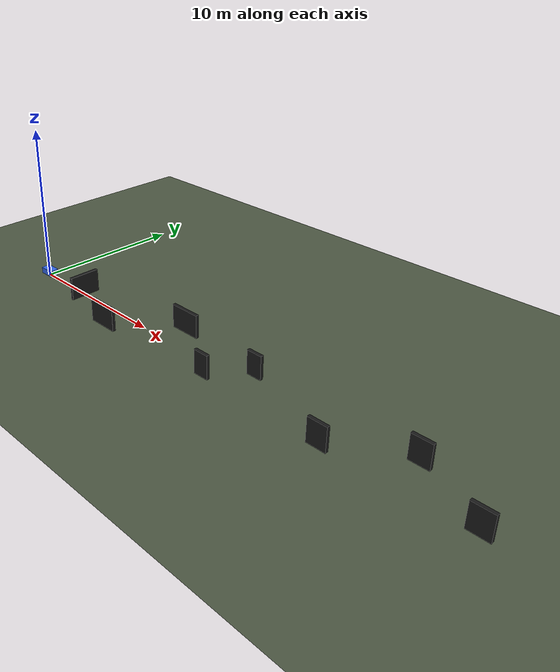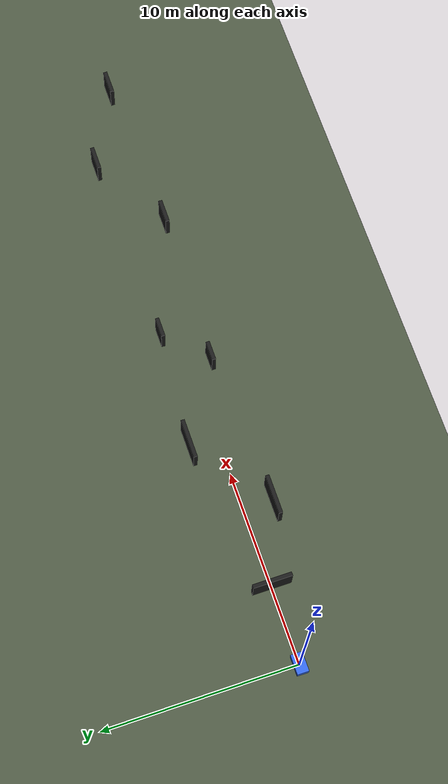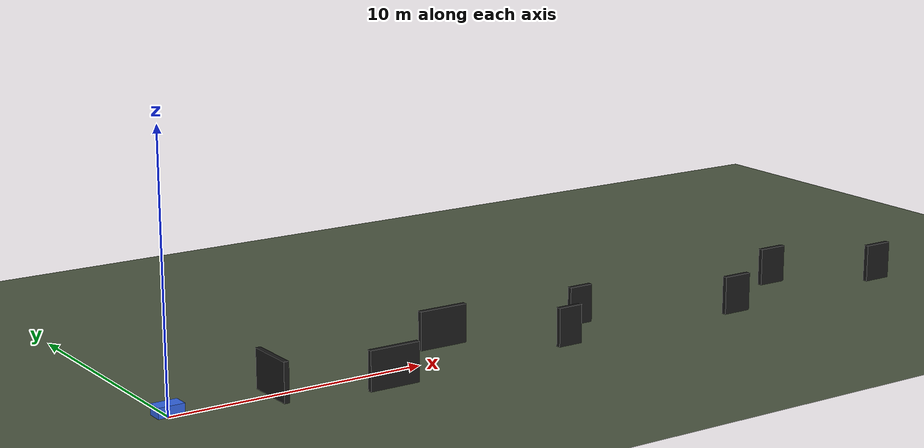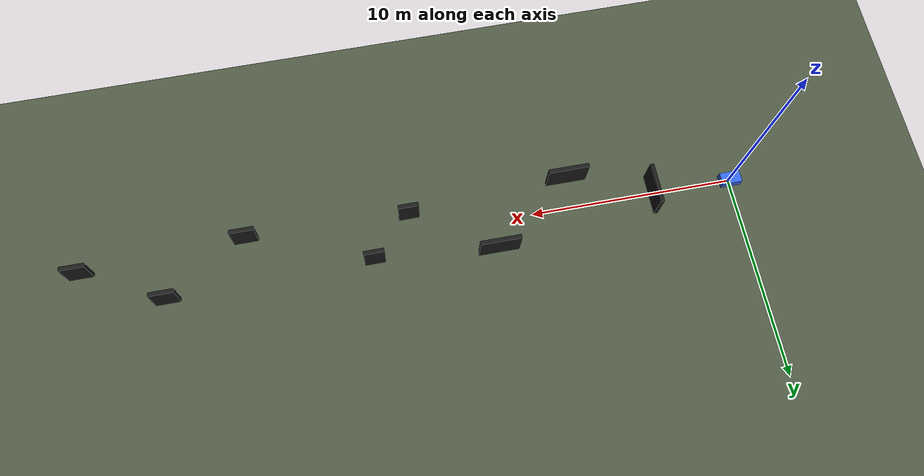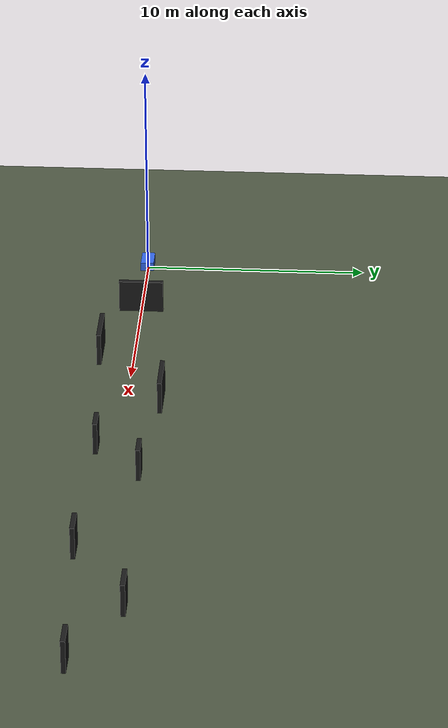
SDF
<?xml version="1.0"?>
<sdf version="1.6">
<world name="default">
  <!-- /clock 由 launch 里的 gzserver -s libgazebo_ros_init.so 提供 -->
  <!-- 中性浮力：水下机器人整机密度≈水体，这里直接关闭重力，
       避免模型下沉贴地后被地面摩擦拖住，导致指令速度无法兑现 -->
  <gravity>0 0 0</gravity>
  <!-- 水下环境全局配置 -->
  <physics type="ode">
    <max_step_size>0.001</max_step_size>
    <real_time_factor>1</real_time_factor>
    <ode>
      <solver>
        <type>quick</type>
        <iters>10</iters>
      </solver>
    </ode>
  </physics>

  <!-- 水下场景光效与雾效 -->
  <scene>
    <ambient>0.12 0.22 0.32 1</ambient>
    <background>0.06 0.16 0.28 1</background>
    <shadows>false</shadows>
    <fog>
      <type>linear</type>
      <color>0.06 0.16 0.28 1</color>
      <density>0.35</density>
      <start>1.5</start>
      <end>18</end>
    </fog>
  </scene>

  <!-- 地面 -->
  <model name="ground">
    <static>true</static>
    <link name="link">
      <collision name="collision">
        <geometry><plane><normal>0 0 1</normal><size>100 100</size></plane></geometry>
      </collision>
      <visual name="visual">
        <geometry><plane><normal>0 0 1</normal><size>100 100</size></plane></geometry>
        <material>
          <ambient>0.22 0.26 0.2 1</ambient>
          <diffuse>0.3 0.34 0.26 1</diffuse>
        </material>
      </visual>
    </link>
  </model>

    <!-- AUV 水下机器人 -->
  <model name="auv">
    <pose>0 0 0.3 0 0 0</pose>
    <link name="base_link">
      <inertial>
        <mass>5.0</mass>
        <inertia>
          <ixx>0.1</ixx>
          <iyy>0.1</iyy>
          <izz>0.05</izz>
        </inertia>
      </inertial>
      <!-- 注意：SDF 的 velocity_decay 单位是「每秒衰减比例」，
           填 0.997 等于每秒丢掉 99.7% 的速度，模型几乎不动；
           这里不启用速度衰减，速度完全由 cmd_vel 决定 -->
      <collision name="base_collision">
        <geometry><box><size>1.0 0.6 0.4</size></box></geometry>
      </collision>
      <visual name="base_visual">
        <geometry><box><size>1.0 0.6 0.4</size></box></geometry>
        <material>
          <ambient>0.1 0.3 0.8 1</ambient>
          <diffuse>0.2 0.4 0.9 1</diffuse>
        </material>
      </visual>
      <!-- 前置相机 -->
      <sensor name="camera" type="camera">
        <pose>0.55 0 0 0 0 0</pose>
        <always_on>true</always_on>
        <update_rate>20</update_rate>
        <camera>
          <horizontal_fov>1.047</horizontal_fov>
          <image>
            <width>640</width>
            <height>480</height>
          </image>
          <clip>
            <near>0.1</near>
            <far>50</far>
          </clip>
        </camera>
        <plugin name="camera_controller" filename="libgazebo_ros_camera.so">
          <ros>
            <namespace>/auv/camera</namespace>
          </ros>
          <camera_name>camera</camera_name>
          <frame_name>base_link</frame_name>
        </plugin>
      </sensor>
    </link>

    <plugin name="planar_move" filename="libgazebo_ros_planar_move.so">
      <ros>
        <namespace>/auv</namespace>
      </ros>
      <link_name>base_link</link_name>
      <topic_name>cmd_vel</topic_name>
      <odom_topic>odom</odom_topic>
      <odom_frame>odom</odom_frame>
      <robot_base_frame>base_link</robot_base_frame>
      <publish_odom>true</publish_odom>
      <publish_tf>true</publish_tf>
    </plugin>
  </model>

  <!-- ========== 测试障碍物：双向避障测试组 ========== -->
  <!-- 正前方第一道竖墙 -->
  <model name="wall_front">
    <static>true</static>
    <pose>4 0 0.75 0 0 0</pose>
    <link name="link">
      <collision name="collision">
        <geometry><box><size>0.2 2 1.5</size></box></geometry>
      </collision>
      <visual name="visual">
        <geometry><box><size>0.2 2 1.5</size></box></geometry>
        <material>
          <ambient>0.1 0.1 0.1 1</ambient>
          <diffuse>0.1 0.1 0.1 1</diffuse>
        </material>
      </visual>
    </link>
  </model>

  <!-- 右前方障碍物（测试左避障） -->
  <model name="wall_right">
    <static>true</static>
    <pose>8 -1.5 0.75 0 0 0</pose>
    <link name="link">
      <collision name="collision">
        <geometry><box><size>2 0.2 1.5</size></box></geometry>
      </collision>
      <visual name="visual">
        <geometry><box><size>2 0.2 1.5</size></box></geometry>
        <material>
          <ambient>0.1 0.1 0.1 1</ambient>
          <diffuse>0.1 0.1 0.1 1</diffuse>
        </material>
      </visual>
    </link>
  </model>

  <!-- 左前方障碍物（测试右避障） -->
  <model name="wall_left">
    <static>true</static>
    <pose>12 1.5 0.75 0 0 0</pose>
    <link name="link">
      <collision name="collision">
        <geometry><box><size>2 0.2 1.5</size></box></geometry>
      </collision>
      <visual name="visual">
        <geometry><box><size>2 0.2 1.5</size></box></geometry>
        <material>
          <ambient>0.1 0.1 0.1 1</ambient>
          <diffuse>0.1 0.1 0.1 1</diffuse>
        </material>
      </visual>
    </link>
  </model>

  <!-- 交错障碍物组（测试连续双向切换避障） -->
  <model name="wall_mid1">
    <static>true</static>
    <pose>16 -1 0.75 0 0 0</pose>
    <link name="link">
      <collision name="collision">
        <geometry><box><size>1 0.2 1.5</size></box></geometry>
      </collision>
      <visual name="visual">
        <geometry><box><size>1 0.2 1.5</size></box></geometry>
        <material>
          <ambient>0.1 0.1 0.1 1</ambient>
          <diffuse>0.1 0.1 0.1 1</diffuse>
        </material>
      </visual>
    </link>
  </model>

  <model name="wall_mid2">
    <static>true</static>
    <pose>18 1 0.75 0 0 0</pose>
    <link name="link">
      <collision name="collision">
        <geometry><box><size>1 0.2 1.5</size></box></geometry>
      </collision>
      <visual name="visual">
        <geometry><box><size>1 0.2 1.5</size></box></geometry>
        <material>
          <ambient>0.1 0.1 0.1 1</ambient>
          <diffuse>0.1 0.1 0.1 1</diffuse>
        </material>
      </visual>
    </link>
  </model>

  <!-- 第二组错位墙体：验证连续避让与冷却后重复触发 -->
  <model name="wall_far1">
    <static>true</static>
    <pose>24 -1.2 0.75 0 0 0</pose>
    <link name="link">
      <collision name="collision">
        <geometry><box><size>1.2 0.2 1.5</size></box></geometry>
      </collision>
      <visual name="visual">
        <geometry><box><size>1.2 0.2 1.5</size></box></geometry>
        <material>
          <ambient>0.1 0.1 0.1 1</ambient>
          <diffuse>0.1 0.1 0.1 1</diffuse>
        </material>
      </visual>
    </link>
  </model>

  <model name="wall_far2">
    <static>true</static>
    <pose>28 1.2 0.75 0 0 0</pose>
    <link name="link">
      <collision name="collision">
        <geometry><box><size>1.2 0.2 1.5</size></box></geometry>
      </collision>
      <visual name="visual">
        <geometry><box><size>1.2 0.2 1.5</size></box></geometry>
        <material>
          <ambient>0.1 0.1 0.1 1</ambient>
          <diffuse>0.1 0.1 0.1 1</diffuse>
        </material>
      </visual>
    </link>
  </model>

  <model name="wall_far3">
    <static>true</static>
    <pose>32 -0.8 0.75 0 0 0</pose>
    <link name="link">
      <collision name="collision">
        <geometry><box><size>1.2 0.2 1.5</size></box></geometry>
      </collision>
      <visual name="visual">
        <geometry><box><size>1.2 0.2 1.5</size></box></geometry>
        <material>
          <ambient>0.1 0.1 0.1 1</ambient>
          <diffuse>0.1 0.1 0.1 1</diffuse>
        </material>
      </visual>
    </link>
  </model>

</world>
</sdf>
